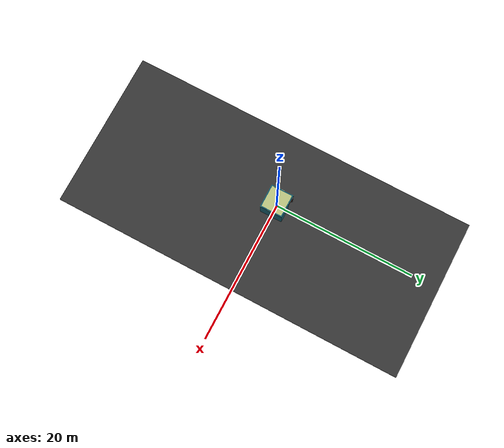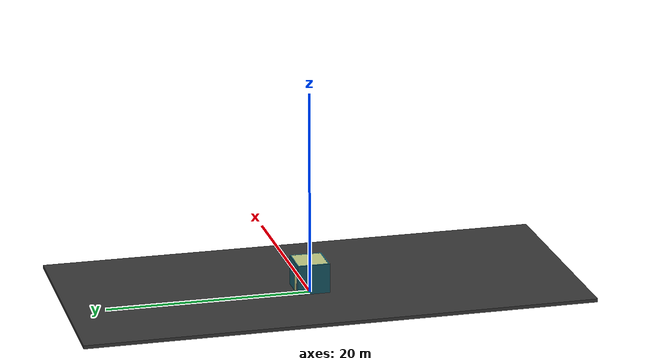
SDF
<?xml version ="1.0"?>
<sdf version="1.6">
  <model name="self_world">
    <pose>0 0 0  0 0 0</pose>
    <static>true</static>
    <link name="link">
      <collision name="colision3">
        <geometry>
          <mesh>
            <uri>model://self_world/meshes/world.dae</uri>
            <scale>1 1 1</scale>
          </mesh>
        </geometry>
      </collision>
      <visual name="visual3">
        <cast_shadows>true</cast_shadows>
        <geometry>
          <mesh>
            <uri>model://self_world/meshes/world.dae</uri>
            <scale>1 1 1</scale>
          </mesh>
        </geometry>
      </visual>

    </link>
  </model>
</sdf>
